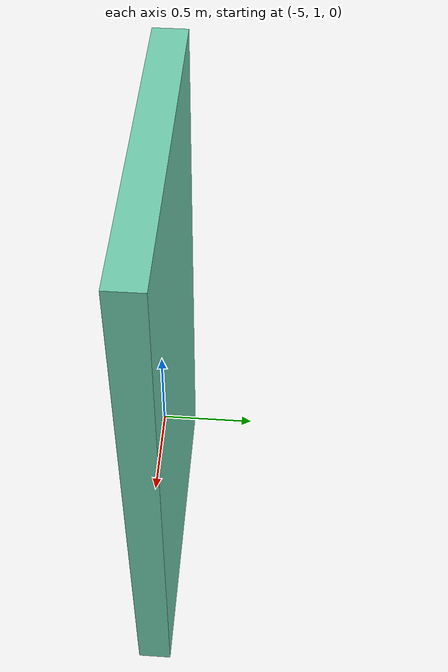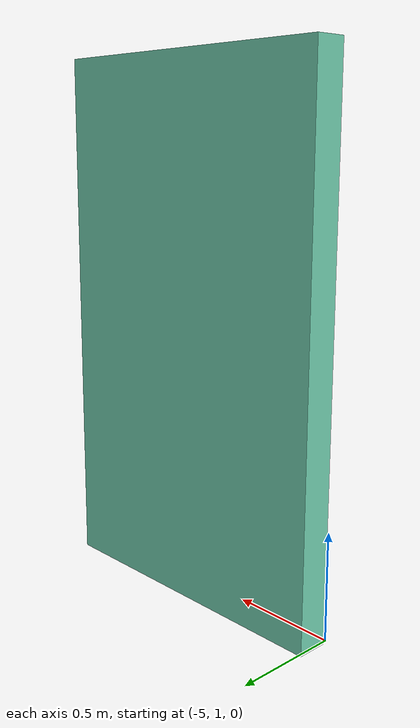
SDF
<sdf version="1.6">
 <world name="default">
  <model name="map_3">
   <pose>0.639107 -0.35531 0 0 -0 0</pose>
   <link name="Wall_38">
    <collision name="Wall_38_Collision">
     <geometry><box><size>1.5 0.15 2.5</size></box></geometry>
     <pose>0 0 1.25 0 -0 0</pose>
    </collision>
    <visual name="Wall_38_Visual">
     <pose>0 0 1.25 0 -0 0</pose>
     <geometry><box><size>1.5 0.15 2.5</size></box></geometry>
     <material>
      <script><uri>file://media/materials/scripts/gazebo.material</uri><name>Gazebo/Grey</name></script>
      <ambient>0.435294 0.796078 0.67451 1</ambient>
     </material>
     <meta><layer>0</layer></meta>
    </visual>
    <pose>-4.90126 1.45569 0 0 -0 3.14159</pose>
   </link>
   <static>1</static>
  </model>
 </world>
</sdf>
